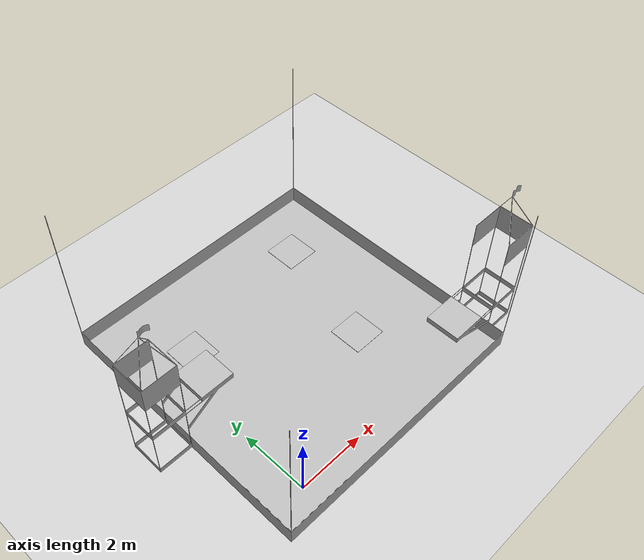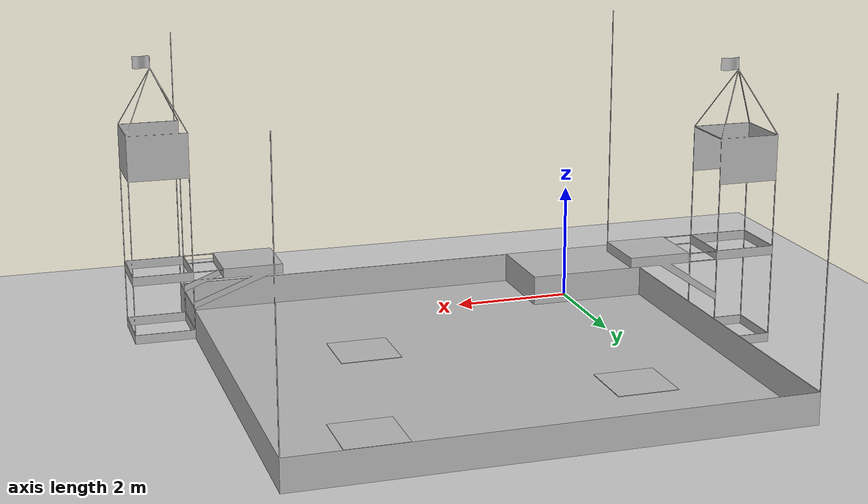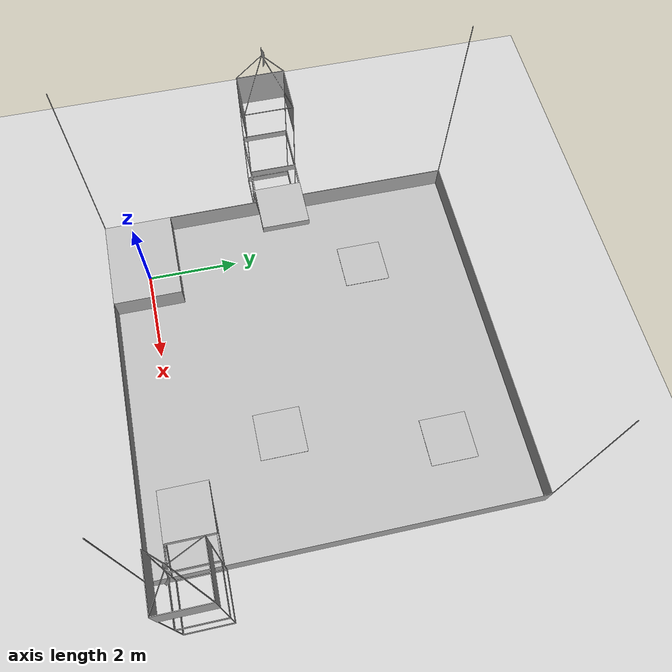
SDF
<sdf version="1.7">
 <world name="default">
  <physics name="normal" type="ode">
   <real_time_update_rate>1000</real_time_update_rate>
   <max_step_size>0.001</max_step_size>
   <real_time_factor>1</real_time_factor>
  </physics>
  <include><uri>model://ground_plane</uri></include>
  <include><uri>model://sun</uri></include>
  <gravity>0 0 -9.8</gravity>
  <magnetic_field>6e-06 2.3e-05 -4.2e-05</magnetic_field>
  <atmosphere type="adiabatic"/>
  <scene><ambient>0.4 0.4 0.4 1</ambient><background>0.7 0.7 0.7 1</background><shadows>1</shadows></scene>
  <spherical_coordinates>
   <surface_model>EARTH_WGS84</surface_model>
   <latitude_deg>0</latitude_deg>
   <longitude_deg>0</longitude_deg>
   <elevation>0</elevation>
   <heading_deg>0</heading_deg>
  </spherical_coordinates>
  <model name="arena_spawn">
   <static>1</static>
   <link name="link_0">
    <pose>-3 -3.8 0.11 0 -0 0</pose>
    <inertial>
     <mass>15</mass>
     <inertia><ixx>0</ixx><ixy>0</ixy><ixz>0</ixz><iyy>0</iyy><iyz>0</iyz><izz>0</izz></inertia>
    </inertial>
    <self_collide>1</self_collide>
    <visual name="visual">
     <geometry><mesh><uri>../arena_models/arena_spawn/meshes/Arena.obj</uri><scale>1 1 1</scale></mesh></geometry>
    </visual>
    <collision name="collision">
     <geometry><mesh><uri>../arena_models/arena_spawn/meshes/Arena.obj</uri><scale>1 1 1</scale></mesh></geometry>
     <surface>
      <friction>
       <ode><mu>1</mu><mu2>1</mu2><fdir1>0 0 0</fdir1><slip1>0</slip1><slip2>0</slip2></ode>
       <torsional>
        <coefficient>1</coefficient>
        <patch_radius>100</patch_radius>
        <surface_radius>100</surface_radius>
        <use_patch_radius>1</use_patch_radius>
        <ode><slip>0</slip></ode>
       </torsional>
      </friction>
      <bounce><restitution_coefficient>0</restitution_coefficient><threshold>1e+06</threshold></bounce>
      <contact>
       <collide_without_contact>0</collide_without_contact>
       <collide_without_contact_bitmask>1</collide_without_contact_bitmask>
       <collide_bitmask>1</collide_bitmask>
       <ode>
        <soft_cfm>0</soft_cfm>
        <soft_erp>0.2</soft_erp>
        <kp>1e+13</kp>
        <kd>1</kd>
        <max_vel>0.01</max_vel>
        <min_depth>0</min_depth>
       </ode>
       <bullet>
        <split_impulse>1</split_impulse>
        <split_impulse_penetration_threshold>-0.01</split_impulse_penetration_threshold>
        <soft_cfm>0</soft_cfm>
        <soft_erp>0.2</soft_erp>
        <kp>1e+13</kp>
        <kd>1</kd>
       </bullet>
      </contact>
     </surface>
    </collision>
   </link>
   <link name="link_4">
    <pose>-3 -3.8 0.11 0 -0 0</pose>
    <inertial>
     <mass>1</mass>
     <inertia>
      <ixx>0.166667</ixx>
      <ixy>0</ixy>
      <ixz>0</ixz>
      <iyy>0.166667</iyy>
      <iyz>0</iyz>
      <izz>0.166667</izz>
     </inertia>
    </inertial>
    <self_collide>1</self_collide>
    <visual name="visual">
     <geometry>
      <mesh><uri>../arena_models/arena_spawn/meshes/high_base_left.obj</uri><scale>1 1 1</scale></mesh>
     </geometry>
    </visual>
    <collision name="collision">
     <geometry>
      <mesh><uri>../arena_models/arena_spawn/meshes/high_base_left.obj</uri><scale>1 1 1</scale></mesh>
     </geometry>
     <surface>
      <friction>
       <ode><mu>1</mu><mu2>1</mu2><fdir1>0 0 0</fdir1><slip1>0</slip1><slip2>0</slip2></ode>
       <torsional>
        <coefficient>1</coefficient>
        <patch_radius>100</patch_radius>
        <surface_radius>100</surface_radius>
        <use_patch_radius>1</use_patch_radius>
        <ode><slip>0</slip></ode>
       </torsional>
      </friction>
      <bounce><restitution_coefficient>0</restitution_coefficient><threshold>1e+06</threshold></bounce>
      <contact>
       <collide_without_contact>0</collide_without_contact>
       <collide_without_contact_bitmask>1</collide_without_contact_bitmask>
       <collide_bitmask>1</collide_bitmask>
       <ode>
        <soft_cfm>0</soft_cfm>
        <soft_erp>0.2</soft_erp>
        <kp>1e+13</kp>
        <kd>1</kd>
        <max_vel>0.01</max_vel>
        <min_depth>0</min_depth>
       </ode>
       <bullet>
        <split_impulse>1</split_impulse>
        <split_impulse_penetration_threshold>-0.01</split_impulse_penetration_threshold>
        <soft_cfm>0</soft_cfm>
        <soft_erp>0.2</soft_erp>
        <kp>1e+13</kp>
        <kd>1</kd>
       </bullet>
      </contact>
     </surface>
    </collision>
   </link>
   <link name="link_5">
    <pose>-3 -3.8 0.11 0 -0 0</pose>
    <inertial>
     <mass>1</mass>
     <inertia>
      <ixx>0.166667</ixx>
      <ixy>0</ixy>
      <ixz>0</ixz>
      <iyy>0.166667</iyy>
      <iyz>0</iyz>
      <izz>0.166667</izz>
     </inertia>
    </inertial>
    <self_collide>1</self_collide>
    <visual name="visual">
     <geometry>
      <mesh><uri>../arena_models/arena_spawn/meshes/high_base_right.obj</uri><scale>1 1 1</scale></mesh>
     </geometry>
    </visual>
    <collision name="collision">
     <geometry>
      <mesh><uri>../arena_models/arena_spawn/meshes/high_base_right.obj</uri><scale>1 1 1</scale></mesh>
     </geometry>
     <surface>
      <friction>
       <ode><mu>1</mu><mu2>1</mu2><fdir1>0 0 0</fdir1><slip1>0</slip1><slip2>0</slip2></ode>
       <torsional>
        <coefficient>1</coefficient>
        <patch_radius>100</patch_radius>
        <surface_radius>100</surface_radius>
        <use_patch_radius>1</use_patch_radius>
        <ode><slip>0</slip></ode>
       </torsional>
      </friction>
      <bounce><restitution_coefficient>0</restitution_coefficient><threshold>1e+06</threshold></bounce>
      <contact>
       <collide_without_contact>0</collide_without_contact>
       <collide_without_contact_bitmask>1</collide_without_contact_bitmask>
       <collide_bitmask>1</collide_bitmask>
       <ode>
        <soft_cfm>0</soft_cfm>
        <soft_erp>0.2</soft_erp>
        <kp>1e+13</kp>
        <kd>1</kd>
        <max_vel>0.01</max_vel>
        <min_depth>0</min_depth>
       </ode>
       <bullet>
        <split_impulse>1</split_impulse>
        <split_impulse_penetration_threshold>-0.01</split_impulse_penetration_threshold>
        <soft_cfm>0</soft_cfm>
        <soft_erp>0.2</soft_erp>
        <kp>1e+13</kp>
        <kd>1</kd>
       </bullet>
      </contact>
     </surface>
    </collision>
   </link>
   <link name="link_1_1">
    <pose>1.97996 1.72004 0.154507 -0 -0 -2.8e-05</pose>
    <visual name="visual">
     <geometry><mesh><uri>../arena_models/arena_spawn/../land_base/meshes/land_base_1.obj</uri></mesh></geometry>
    </visual>
    <collision name="collision">
     <geometry><mesh><uri>../arena_models/arena_spawn/../land_base/meshes/land_base_1.obj</uri></mesh></geometry>
    </collision>
    <inertial>
     <mass>1</mass>
     <inertia><ixx>1</ixx><ixy>0</ixy><ixz>0</ixz><iyy>1</iyy><iyz>0</iyz><izz>1</izz></inertia>
    </inertial>
   </link>
   <link name="link_1_2">
    <pose>-0.684753 -1.91361 0.151987 0 0 -2.8e-05</pose>
    <visual name="visual">
     <geometry><mesh><uri>../arena_models/arena_spawn/../land_base/meshes/land_base_1.obj</uri></mesh></geometry>
    </visual>
    <collision name="collision">
     <geometry><mesh><uri>../arena_models/arena_spawn/../land_base/meshes/land_base_1.obj</uri></mesh></geometry>
    </collision>
   </link>
   <link name="link_1_3">
    <pose>-1.42983 2.56104 0.151718 0 0 -2.8e-05</pose>
    <visual name="visual">
     <geometry><mesh><uri>../arena_models/arena_spawn/../land_base/meshes/land_base_1.obj</uri></mesh></geometry>
    </visual>
    <collision name="collision">
     <geometry><mesh><uri>../arena_models/arena_spawn/../land_base/meshes/land_base_1.obj</uri></mesh></geometry>
    </collision>
   </link>
   <static>0</static>
   <pose>2.61959 4.19893 0 0 0 -1.57</pose>
  </model>
 </world>
</sdf>
